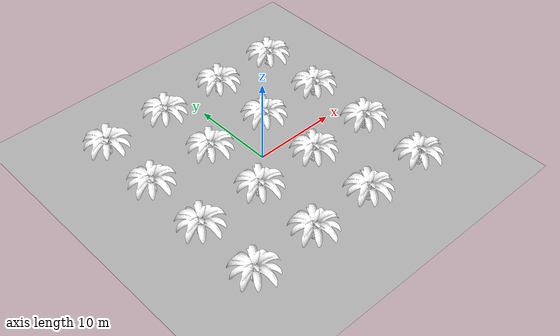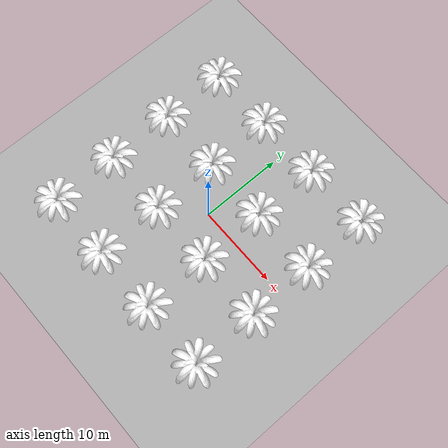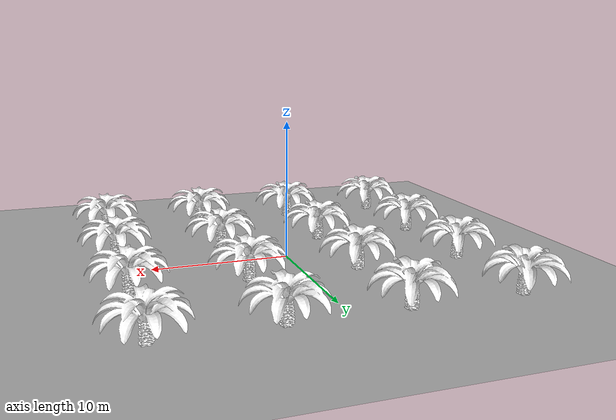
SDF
<?xml version="1.0" ?>
<sdf version="1.9">
  <world name="kebun_sawit">

    <physics name="1ms" type="ode">
      <max_step_size>0.001</max_step_size>
      <real_time_factor>1.0</real_time_factor>
    </physics>

    <plugin filename="gz-sim-physics-system" name="gz::sim::systems::Physics"/>
    <plugin filename="gz-sim-user-commands-system" name="gz::sim::systems::UserCommands"/>
    <plugin filename="gz-sim-scene-broadcaster-system" name="gz::sim::systems::SceneBroadcaster"/>
    <plugin filename="gz-sim-sensors-system" name="gz::sim::systems::Sensors">
      <render_engine>ogre2</render_engine>
    </plugin>
    <plugin filename="gz-sim-imu-system" name="gz::sim::systems::Imu"/>
    <plugin filename="gz-sim-navsat-system" name="gz::sim::systems::NavSat"/>
    <plugin filename="gz-sim-magnetometer-system" name="gz::sim::systems::Magnetometer"/>
    <plugin filename="gz-sim-air-pressure-system" name="gz::sim::systems::AirPressure"/>

    <spherical_coordinates>
      <surface_model>EARTH_WGS84</surface_model>
      <world_frame_orientation>ENU</world_frame_orientation>
      <latitude_deg>47.397742</latitude_deg>
      <longitude_deg>8.545594</longitude_deg>
      <elevation>488.0</elevation>
      <heading_deg>0</heading_deg>
    </spherical_coordinates>

    <magnetic_field>0.215865 0.052729 -0.428456</magnetic_field>

    <light type="directional" name="sun">
      <cast_shadows>false</cast_shadows>
      <pose>0 0 10 0 0 0</pose>
      <diffuse>0.8 0.8 0.8 1</diffuse>
      <specular>0.2 0.2 0.2 1</specular>
      <attenuation>
        <range>1000</range>
        <constant>0.9</constant>
        <linear>0.01</linear>
        <quadratic>0.001</quadratic>
      </attenuation>
      <direction>-0.5 0.1 -0.9</direction>
    </light>

    <model name="ground_plane">
      <static>true</static>
      <link name="link">
        <collision name="collision">
          <geometry>
            <plane>
              <normal>0 0 1</normal>
              <size>100 100</size>
            </plane>
          </geometry>
        </collision>
        <visual name="visual">
          <geometry>
            <plane>
              <normal>0 0 1</normal>
              <size>100 100</size>
            </plane>
          </geometry>
          <material>
            <ambient>0.3 0.3 0.3 1</ambient>
            <diffuse>0.7 0.7 0.7 1</diffuse>
            <specular>0.1 0.1 0.1 1</specular>
          </material>
        </visual>
      </link>
    </model>

    <include><name>sawit_0_0</name><uri>model://sawit_sedeng</uri><pose>-12 -12 0 0 0 0</pose></include>
    <include><name>sawit_0_1</name><uri>model://sawit_sedeng</uri><pose>-12 -4 0 0 0 0</pose></include>
    <include><name>sawit_0_2</name><uri>model://sawit_sedeng</uri><pose>-12 4 0 0 0 0</pose></include>
    <include><name>sawit_0_3</name><uri>model://sawit_sedeng</uri><pose>-12 12 0 0 0 0</pose></include>

    <include><name>sawit_1_0</name><uri>model://sawit_sedeng</uri><pose>-4 -12 0 0 0 0</pose></include>
    <include><name>sawit_1_1</name><uri>model://sawit_sedeng</uri><pose>-4 -4 0 0 0 0</pose></include>
    <include><name>sawit_1_2</name><uri>model://sawit_sedeng</uri><pose>-4 4 0 0 0 0</pose></include>
    <include><name>sawit_1_3</name><uri>model://sawit_sedeng</uri><pose>-4 12 0 0 0 0</pose></include>

    <include><name>sawit_2_0</name><uri>model://sawit_sedeng</uri><pose>4 -12 0 0 0 0</pose></include>
    <include><name>sawit_2_1</name><uri>model://sawit_sedeng</uri><pose>4 -4 0 0 0 0</pose></include>
    <include><name>sawit_2_2</name><uri>model://sawit_sedeng</uri><pose>4 4 0 0 0 0</pose></include>
    <include><name>sawit_2_3</name><uri>model://sawit_sedeng</uri><pose>4 12 0 0 0 0</pose></include>

    <include><name>sawit_3_0</name><uri>model://sawit_sedeng</uri><pose>12 -12 0 0 0 0</pose></include>
    <include><name>sawit_3_1</name><uri>model://sawit_sedeng</uri><pose>12 -4 0 0 0 0</pose></include>
    <include><name>sawit_3_2</name><uri>model://sawit_sedeng</uri><pose>12 4 0 0 0 0</pose></include>
    <include><name>sawit_3_3</name><uri>model://sawit_sedeng</uri><pose>12 12 0 0 0 0</pose></include>

    <scene>
      <shadows>false</shadows>
    </scene>
</world>
</sdf>

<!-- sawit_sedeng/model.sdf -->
<sdf version="1.9">
  <model name="sawit_sedeng">
    <static>true</static>
    <link name="link">
      <collision name="collision">
        <geometry>
          <mesh>
            <uri>model://sawit_sedeng/Sawitsedeng.dae</uri>
            <scale>1 1 1</scale>
          </mesh>
        </geometry>
      </collision>
      <visual name="visual">
        <geometry>
          <mesh>
            <uri>model://sawit_sedeng/Sawitsedeng.dae</uri>
            <scale>1 1 1</scale>
          </mesh>
        </geometry>
        <material>
          <diffuse>1.0 1.0 1.0 1.0</diffuse>
          <specular>0.5 0.5 0.5 1.0</specular>
          <pbr>
            <metal>
              <albedo_map>model://sawit_sedeng/Image_0.png</albedo_map>
            </metal>
          </pbr>
          <blend_mode>add</blend_mode>
          <alpha_reject>0.5</alpha_reject>
        </material>
      </visual>
    </link>
  </model>
</sdf>
